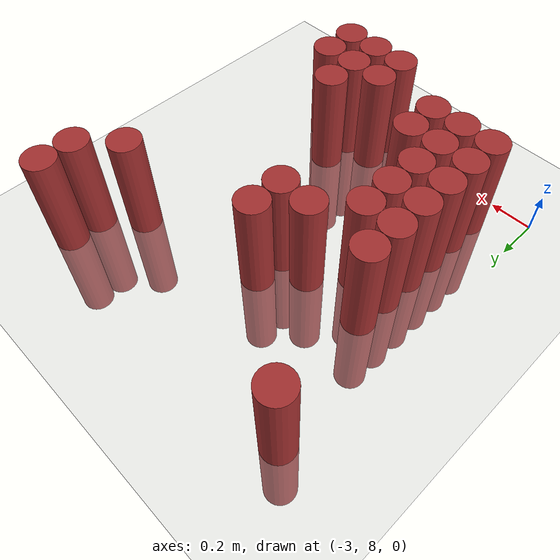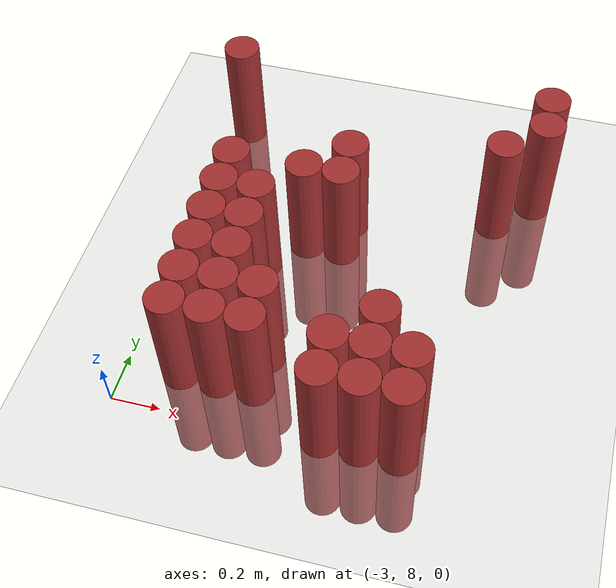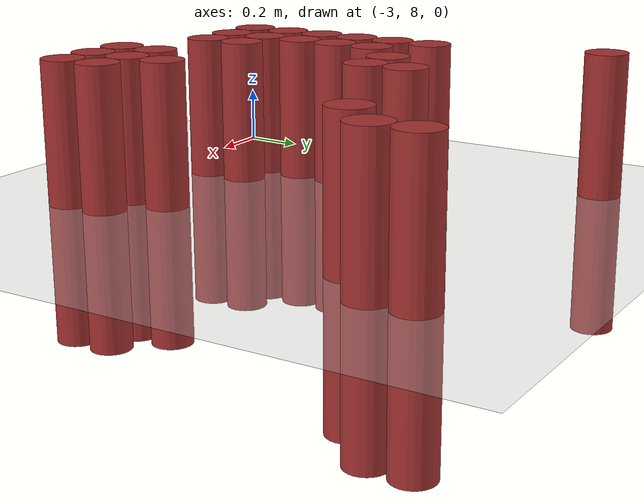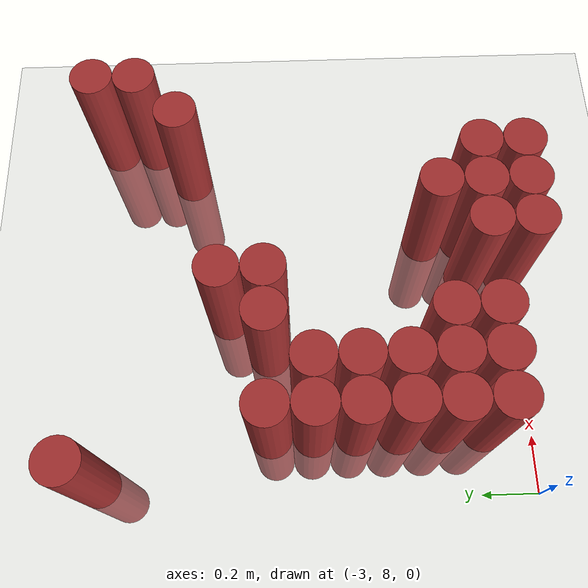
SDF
<sdf version="1.6">
 <world name="default">
  <model name="ground_plane">
   <static>1</static>
   <link name="link">
    <collision name="collision">
     <geometry><plane><normal>0 0 1</normal><size>100 100</size></plane></geometry>
     <surface><friction><ode><mu>100</mu><mu2>50</mu2></ode></friction></surface>
    </collision>
    <visual name="visual">
     <cast_shadows>0</cast_shadows>
     <geometry><plane><normal>0 0 1</normal><size>100 100</size></plane></geometry>
     <material>
      <script><uri>file://media/materials/scripts/gazebo.material</uri><name>Gazebo/Grey</name></script>
     </material>
    </visual>
   </link>
  </model>
  <model name="unit_cylinder_178">
   <static>1</static>
   <pose>-2.925000 9.525000 0.000000 0.000000 0.000000 0.000000</pose>
   <link name="link">
    <inertial>
     <mass>1</mass>
     <inertia><ixx>0.145833</ixx><ixy>0</ixy><ixz>0</ixz><iyy>0.145833</iyy><iyz>0</iyz><izz>0.125</izz></inertia>
    </inertial>
    <collision name="collision">
     <geometry><cylinder><radius>0.075000</radius><length>1</length></cylinder></geometry>
    </collision>
    <visual name="visual">
     <geometry><cylinder><radius>0.075000</radius><length>1</length></cylinder></geometry>
     <material>
      <ambient>0.648000 0.192000 0.192000 1</ambient>
      <diffuse>0.648000 0.192000 0.192000 1</diffuse>
     </material>
     <material>
      <script><name>Gazebo/Grey</name><uri>file://media/materials/scripts/gazebo.material</uri></script>
     </material>
    </visual>
   </link>
  </model>
  <model name="unit_cylinder_181">
   <static>1</static>
   <pose>-2.775000 8.175000 0.000000 0.000000 0.000000 0.000000</pose>
   <link name="link">
    <inertial>
     <mass>1</mass>
     <inertia><ixx>0.145833</ixx><ixy>0</ixy><ixz>0</ixz><iyy>0.145833</iyy><iyz>0</iyz><izz>0.125</izz></inertia>
    </inertial>
    <collision name="collision">
     <geometry><cylinder><radius>0.075000</radius><length>1</length></cylinder></geometry>
    </collision>
    <visual name="visual">
     <geometry><cylinder><radius>0.075000</radius><length>1</length></cylinder></geometry>
     <material>
      <ambient>0.648000 0.192000 0.192000 1</ambient>
      <diffuse>0.648000 0.192000 0.192000 1</diffuse>
     </material>
     <material>
      <script><name>Gazebo/Grey</name><uri>file://media/materials/scripts/gazebo.material</uri></script>
     </material>
    </visual>
   </link>
  </model>
  <model name="unit_cylinder_182">
   <static>1</static>
   <pose>-2.775000 8.325000 0.000000 0.000000 0.000000 0.000000</pose>
   <link name="link">
    <inertial>
     <mass>1</mass>
     <inertia><ixx>0.145833</ixx><ixy>0</ixy><ixz>0</ixz><iyy>0.145833</iyy><iyz>0</iyz><izz>0.125</izz></inertia>
    </inertial>
    <collision name="collision">
     <geometry><cylinder><radius>0.075000</radius><length>1</length></cylinder></geometry>
    </collision>
    <visual name="visual">
     <geometry><cylinder><radius>0.075000</radius><length>1</length></cylinder></geometry>
     <material>
      <ambient>0.648000 0.192000 0.192000 1</ambient>
      <diffuse>0.648000 0.192000 0.192000 1</diffuse>
     </material>
     <material>
      <script><name>Gazebo/Grey</name><uri>file://media/materials/scripts/gazebo.material</uri></script>
     </material>
    </visual>
   </link>
  </model>
  <model name="unit_cylinder_183">
   <static>1</static>
   <pose>-2.775000 8.475000 0.000000 0.000000 0.000000 0.000000</pose>
   <link name="link">
    <inertial>
     <mass>1</mass>
     <inertia><ixx>0.145833</ixx><ixy>0</ixy><ixz>0</ixz><iyy>0.145833</iyy><iyz>0</iyz><izz>0.125</izz></inertia>
    </inertial>
    <collision name="collision">
     <geometry><cylinder><radius>0.075000</radius><length>1</length></cylinder></geometry>
    </collision>
    <visual name="visual">
     <geometry><cylinder><radius>0.075000</radius><length>1</length></cylinder></geometry>
     <material>
      <ambient>0.648000 0.192000 0.192000 1</ambient>
      <diffuse>0.648000 0.192000 0.192000 1</diffuse>
     </material>
     <material>
      <script><name>Gazebo/Grey</name><uri>file://media/materials/scripts/gazebo.material</uri></script>
     </material>
    </visual>
   </link>
  </model>
  <model name="unit_cylinder_184">
   <static>1</static>
   <pose>-2.775000 8.625000 0.000000 0.000000 0.000000 0.000000</pose>
   <link name="link">
    <inertial>
     <mass>1</mass>
     <inertia><ixx>0.145833</ixx><ixy>0</ixy><ixz>0</ixz><iyy>0.145833</iyy><iyz>0</iyz><izz>0.125</izz></inertia>
    </inertial>
    <collision name="collision">
     <geometry><cylinder><radius>0.075000</radius><length>1</length></cylinder></geometry>
    </collision>
    <visual name="visual">
     <geometry><cylinder><radius>0.075000</radius><length>1</length></cylinder></geometry>
     <material>
      <ambient>0.648000 0.192000 0.192000 1</ambient>
      <diffuse>0.648000 0.192000 0.192000 1</diffuse>
     </material>
     <material>
      <script><name>Gazebo/Grey</name><uri>file://media/materials/scripts/gazebo.material</uri></script>
     </material>
    </visual>
   </link>
  </model>
  <model name="unit_cylinder_185">
   <static>1</static>
   <pose>-2.775000 8.775000 0.000000 0.000000 0.000000 0.000000</pose>
   <link name="link">
    <inertial>
     <mass>1</mass>
     <inertia><ixx>0.145833</ixx><ixy>0</ixy><ixz>0</ixz><iyy>0.145833</iyy><iyz>0</iyz><izz>0.125</izz></inertia>
    </inertial>
    <collision name="collision">
     <geometry><cylinder><radius>0.075000</radius><length>1</length></cylinder></geometry>
    </collision>
    <visual name="visual">
     <geometry><cylinder><radius>0.075000</radius><length>1</length></cylinder></geometry>
     <material>
      <ambient>0.648000 0.192000 0.192000 1</ambient>
      <diffuse>0.648000 0.192000 0.192000 1</diffuse>
     </material>
     <material>
      <script><name>Gazebo/Grey</name><uri>file://media/materials/scripts/gazebo.material</uri></script>
     </material>
    </visual>
   </link>
  </model>
  <model name="unit_cylinder_186">
   <static>1</static>
   <pose>-2.775000 8.925000 0.000000 0.000000 0.000000 0.000000</pose>
   <link name="link">
    <inertial>
     <mass>1</mass>
     <inertia><ixx>0.145833</ixx><ixy>0</ixy><ixz>0</ixz><iyy>0.145833</iyy><iyz>0</iyz><izz>0.125</izz></inertia>
    </inertial>
    <collision name="collision">
     <geometry><cylinder><radius>0.075000</radius><length>1</length></cylinder></geometry>
    </collision>
    <visual name="visual">
     <geometry><cylinder><radius>0.075000</radius><length>1</length></cylinder></geometry>
     <material>
      <ambient>0.648000 0.192000 0.192000 1</ambient>
      <diffuse>0.648000 0.192000 0.192000 1</diffuse>
     </material>
     <material>
      <script><name>Gazebo/Grey</name><uri>file://media/materials/scripts/gazebo.material</uri></script>
     </material>
    </visual>
   </link>
  </model>
  <model name="unit_cylinder_193">
   <static>1</static>
   <pose>-2.625000 8.175000 0.000000 0.000000 0.000000 0.000000</pose>
   <link name="link">
    <inertial>
     <mass>1</mass>
     <inertia><ixx>0.145833</ixx><ixy>0</ixy><ixz>0</ixz><iyy>0.145833</iyy><iyz>0</iyz><izz>0.125</izz></inertia>
    </inertial>
    <collision name="collision">
     <geometry><cylinder><radius>0.075000</radius><length>1</length></cylinder></geometry>
    </collision>
    <visual name="visual">
     <geometry><cylinder><radius>0.075000</radius><length>1</length></cylinder></geometry>
     <material>
      <ambient>0.648000 0.192000 0.192000 1</ambient>
      <diffuse>0.648000 0.192000 0.192000 1</diffuse>
     </material>
     <material>
      <script><name>Gazebo/Grey</name><uri>file://media/materials/scripts/gazebo.material</uri></script>
     </material>
    </visual>
   </link>
  </model>
  <model name="unit_cylinder_194">
   <static>1</static>
   <pose>-2.625000 8.325000 0.000000 0.000000 0.000000 0.000000</pose>
   <link name="link">
    <inertial>
     <mass>1</mass>
     <inertia><ixx>0.145833</ixx><ixy>0</ixy><ixz>0</ixz><iyy>0.145833</iyy><iyz>0</iyz><izz>0.125</izz></inertia>
    </inertial>
    <collision name="collision">
     <geometry><cylinder><radius>0.075000</radius><length>1</length></cylinder></geometry>
    </collision>
    <visual name="visual">
     <geometry><cylinder><radius>0.075000</radius><length>1</length></cylinder></geometry>
     <material>
      <ambient>0.648000 0.192000 0.192000 1</ambient>
      <diffuse>0.648000 0.192000 0.192000 1</diffuse>
     </material>
     <material>
      <script><name>Gazebo/Grey</name><uri>file://media/materials/scripts/gazebo.material</uri></script>
     </material>
    </visual>
   </link>
  </model>
  <model name="unit_cylinder_195">
   <static>1</static>
   <pose>-2.625000 8.475000 0.000000 0.000000 0.000000 0.000000</pose>
   <link name="link">
    <inertial>
     <mass>1</mass>
     <inertia><ixx>0.145833</ixx><ixy>0</ixy><ixz>0</ixz><iyy>0.145833</iyy><iyz>0</iyz><izz>0.125</izz></inertia>
    </inertial>
    <collision name="collision">
     <geometry><cylinder><radius>0.075000</radius><length>1</length></cylinder></geometry>
    </collision>
    <visual name="visual">
     <geometry><cylinder><radius>0.075000</radius><length>1</length></cylinder></geometry>
     <material>
      <ambient>0.648000 0.192000 0.192000 1</ambient>
      <diffuse>0.648000 0.192000 0.192000 1</diffuse>
     </material>
     <material>
      <script><name>Gazebo/Grey</name><uri>file://media/materials/scripts/gazebo.material</uri></script>
     </material>
    </visual>
   </link>
  </model>
  <model name="unit_cylinder_196">
   <static>1</static>
   <pose>-2.625000 8.625000 0.000000 0.000000 0.000000 0.000000</pose>
   <link name="link">
    <inertial>
     <mass>1</mass>
     <inertia><ixx>0.145833</ixx><ixy>0</ixy><ixz>0</ixz><iyy>0.145833</iyy><iyz>0</iyz><izz>0.125</izz></inertia>
    </inertial>
    <collision name="collision">
     <geometry><cylinder><radius>0.075000</radius><length>1</length></cylinder></geometry>
    </collision>
    <visual name="visual">
     <geometry><cylinder><radius>0.075000</radius><length>1</length></cylinder></geometry>
     <material>
      <ambient>0.648000 0.192000 0.192000 1</ambient>
      <diffuse>0.648000 0.192000 0.192000 1</diffuse>
     </material>
     <material>
      <script><name>Gazebo/Grey</name><uri>file://media/materials/scripts/gazebo.material</uri></script>
     </material>
    </visual>
   </link>
  </model>
  <model name="unit_cylinder_197">
   <static>1</static>
   <pose>-2.625000 8.775000 0.000000 0.000000 0.000000 0.000000</pose>
   <link name="link">
    <inertial>
     <mass>1</mass>
     <inertia><ixx>0.145833</ixx><ixy>0</ixy><ixz>0</ixz><iyy>0.145833</iyy><iyz>0</iyz><izz>0.125</izz></inertia>
    </inertial>
    <collision name="collision">
     <geometry><cylinder><radius>0.075000</radius><length>1</length></cylinder></geometry>
    </collision>
    <visual name="visual">
     <geometry><cylinder><radius>0.075000</radius><length>1</length></cylinder></geometry>
     <material>
      <ambient>0.648000 0.192000 0.192000 1</ambient>
      <diffuse>0.648000 0.192000 0.192000 1</diffuse>
     </material>
     <material>
      <script><name>Gazebo/Grey</name><uri>file://media/materials/scripts/gazebo.material</uri></script>
     </material>
    </visual>
   </link>
  </model>
  <model name="unit_cylinder_203">
   <static>1</static>
   <pose>-2.475000 8.175000 0.000000 0.000000 0.000000 0.000000</pose>
   <link name="link">
    <inertial>
     <mass>1</mass>
     <inertia><ixx>0.145833</ixx><ixy>0</ixy><ixz>0</ixz><iyy>0.145833</iyy><iyz>0</iyz><izz>0.125</izz></inertia>
    </inertial>
    <collision name="collision">
     <geometry><cylinder><radius>0.075000</radius><length>1</length></cylinder></geometry>
    </collision>
    <visual name="visual">
     <geometry><cylinder><radius>0.075000</radius><length>1</length></cylinder></geometry>
     <material>
      <ambient>0.648000 0.192000 0.192000 1</ambient>
      <diffuse>0.648000 0.192000 0.192000 1</diffuse>
     </material>
     <material>
      <script><name>Gazebo/Grey</name><uri>file://media/materials/scripts/gazebo.material</uri></script>
     </material>
    </visual>
   </link>
  </model>
  <model name="unit_cylinder_204">
   <static>1</static>
   <pose>-2.475000 8.325000 0.000000 0.000000 0.000000 0.000000</pose>
   <link name="link">
    <inertial>
     <mass>1</mass>
     <inertia><ixx>0.145833</ixx><ixy>0</ixy><ixz>0</ixz><iyy>0.145833</iyy><iyz>0</iyz><izz>0.125</izz></inertia>
    </inertial>
    <collision name="collision">
     <geometry><cylinder><radius>0.075000</radius><length>1</length></cylinder></geometry>
    </collision>
    <visual name="visual">
     <geometry><cylinder><radius>0.075000</radius><length>1</length></cylinder></geometry>
     <material>
      <ambient>0.648000 0.192000 0.192000 1</ambient>
      <diffuse>0.648000 0.192000 0.192000 1</diffuse>
     </material>
     <material>
      <script><name>Gazebo/Grey</name><uri>file://media/materials/scripts/gazebo.material</uri></script>
     </material>
    </visual>
   </link>
  </model>
  <model name="unit_cylinder_205">
   <static>1</static>
   <pose>-2.475000 8.925000 0.000000 0.000000 0.000000 0.000000</pose>
   <link name="link">
    <inertial>
     <mass>1</mass>
     <inertia><ixx>0.145833</ixx><ixy>0</ixy><ixz>0</ixz><iyy>0.145833</iyy><iyz>0</iyz><izz>0.125</izz></inertia>
    </inertial>
    <collision name="collision">
     <geometry><cylinder><radius>0.075000</radius><length>1</length></cylinder></geometry>
    </collision>
    <visual name="visual">
     <geometry><cylinder><radius>0.075000</radius><length>1</length></cylinder></geometry>
     <material>
      <ambient>0.648000 0.192000 0.192000 1</ambient>
      <diffuse>0.648000 0.192000 0.192000 1</diffuse>
     </material>
     <material>
      <script><name>Gazebo/Grey</name><uri>file://media/materials/scripts/gazebo.material</uri></script>
     </material>
    </visual>
   </link>
  </model>
  <model name="unit_cylinder_213">
   <static>1</static>
   <pose>-2.325000 8.925000 0.000000 0.000000 0.000000 0.000000</pose>
   <link name="link">
    <inertial>
     <mass>1</mass>
     <inertia><ixx>0.145833</ixx><ixy>0</ixy><ixz>0</ixz><iyy>0.145833</iyy><iyz>0</iyz><izz>0.125</izz></inertia>
    </inertial>
    <collision name="collision">
     <geometry><cylinder><radius>0.075000</radius><length>1</length></cylinder></geometry>
    </collision>
    <visual name="visual">
     <geometry><cylinder><radius>0.075000</radius><length>1</length></cylinder></geometry>
     <material>
      <ambient>0.648000 0.192000 0.192000 1</ambient>
      <diffuse>0.648000 0.192000 0.192000 1</diffuse>
     </material>
     <material>
      <script><name>Gazebo/Grey</name><uri>file://media/materials/scripts/gazebo.material</uri></script>
     </material>
    </visual>
   </link>
  </model>
  <model name="unit_cylinder_214">
   <static>1</static>
   <pose>-2.325000 9.075000 0.000000 0.000000 0.000000 0.000000</pose>
   <link name="link">
    <inertial>
     <mass>1</mass>
     <inertia><ixx>0.145833</ixx><ixy>0</ixy><ixz>0</ixz><iyy>0.145833</iyy><iyz>0</iyz><izz>0.125</izz></inertia>
    </inertial>
    <collision name="collision">
     <geometry><cylinder><radius>0.075000</radius><length>1</length></cylinder></geometry>
    </collision>
    <visual name="visual">
     <geometry><cylinder><radius>0.075000</radius><length>1</length></cylinder></geometry>
     <material>
      <ambient>0.648000 0.192000 0.192000 1</ambient>
      <diffuse>0.648000 0.192000 0.192000 1</diffuse>
     </material>
     <material>
      <script><name>Gazebo/Grey</name><uri>file://media/materials/scripts/gazebo.material</uri></script>
     </material>
    </visual>
   </link>
  </model>
  <model name="unit_cylinder_219">
   <static>1</static>
   <pose>-2.175000 8.025000 0.000000 0.000000 0.000000 0.000000</pose>
   <link name="link">
    <inertial>
     <mass>1</mass>
     <inertia><ixx>0.145833</ixx><ixy>0</ixy><ixz>0</ixz><iyy>0.145833</iyy><iyz>0</iyz><izz>0.125</izz></inertia>
    </inertial>
    <collision name="collision">
     <geometry><cylinder><radius>0.075000</radius><length>1</length></cylinder></geometry>
    </collision>
    <visual name="visual">
     <geometry><cylinder><radius>0.075000</radius><length>1</length></cylinder></geometry>
     <material>
      <ambient>0.648000 0.192000 0.192000 1</ambient>
      <diffuse>0.648000 0.192000 0.192000 1</diffuse>
     </material>
     <material>
      <script><name>Gazebo/Grey</name><uri>file://media/materials/scripts/gazebo.material</uri></script>
     </material>
    </visual>
   </link>
  </model>
  <model name="unit_cylinder_220">
   <static>1</static>
   <pose>-2.175000 8.175000 0.000000 0.000000 0.000000 0.000000</pose>
   <link name="link">
    <inertial>
     <mass>1</mass>
     <inertia><ixx>0.145833</ixx><ixy>0</ixy><ixz>0</ixz><iyy>0.145833</iyy><iyz>0</iyz><izz>0.125</izz></inertia>
    </inertial>
    <collision name="collision">
     <geometry><cylinder><radius>0.075000</radius><length>1</length></cylinder></geometry>
    </collision>
    <visual name="visual">
     <geometry><cylinder><radius>0.075000</radius><length>1</length></cylinder></geometry>
     <material>
      <ambient>0.648000 0.192000 0.192000 1</ambient>
      <diffuse>0.648000 0.192000 0.192000 1</diffuse>
     </material>
     <material>
      <script><name>Gazebo/Grey</name><uri>file://media/materials/scripts/gazebo.material</uri></script>
     </material>
    </visual>
   </link>
  </model>
  <model name="unit_cylinder_224">
   <static>1</static>
   <pose>-2.025000 8.025000 0.000000 0.000000 0.000000 0.000000</pose>
   <link name="link">
    <inertial>
     <mass>1</mass>
     <inertia><ixx>0.145833</ixx><ixy>0</ixy><ixz>0</ixz><iyy>0.145833</iyy><iyz>0</iyz><izz>0.125</izz></inertia>
    </inertial>
    <collision name="collision">
     <geometry><cylinder><radius>0.075000</radius><length>1</length></cylinder></geometry>
    </collision>
    <visual name="visual">
     <geometry><cylinder><radius>0.075000</radius><length>1</length></cylinder></geometry>
     <material>
      <ambient>0.648000 0.192000 0.192000 1</ambient>
      <diffuse>0.648000 0.192000 0.192000 1</diffuse>
     </material>
     <material>
      <script><name>Gazebo/Grey</name><uri>file://media/materials/scripts/gazebo.material</uri></script>
     </material>
    </visual>
   </link>
  </model>
  <model name="unit_cylinder_225">
   <static>1</static>
   <pose>-2.025000 8.175000 0.000000 0.000000 0.000000 0.000000</pose>
   <link name="link">
    <inertial>
     <mass>1</mass>
     <inertia><ixx>0.145833</ixx><ixy>0</ixy><ixz>0</ixz><iyy>0.145833</iyy><iyz>0</iyz><izz>0.125</izz></inertia>
    </inertial>
    <collision name="collision">
     <geometry><cylinder><radius>0.075000</radius><length>1</length></cylinder></geometry>
    </collision>
    <visual name="visual">
     <geometry><cylinder><radius>0.075000</radius><length>1</length></cylinder></geometry>
     <material>
      <ambient>0.648000 0.192000 0.192000 1</ambient>
      <diffuse>0.648000 0.192000 0.192000 1</diffuse>
     </material>
     <material>
      <script><name>Gazebo/Grey</name><uri>file://media/materials/scripts/gazebo.material</uri></script>
     </material>
    </visual>
   </link>
  </model>
  <model name="unit_cylinder_226">
   <static>1</static>
   <pose>-2.025000 8.325000 0.000000 0.000000 0.000000 0.000000</pose>
   <link name="link">
    <inertial>
     <mass>1</mass>
     <inertia><ixx>0.145833</ixx><ixy>0</ixy><ixz>0</ixz><iyy>0.145833</iyy><iyz>0</iyz><izz>0.125</izz></inertia>
    </inertial>
    <collision name="collision">
     <geometry><cylinder><radius>0.075000</radius><length>1</length></cylinder></geometry>
    </collision>
    <visual name="visual">
     <geometry><cylinder><radius>0.075000</radius><length>1</length></cylinder></geometry>
     <material>
      <ambient>0.648000 0.192000 0.192000 1</ambient>
      <diffuse>0.648000 0.192000 0.192000 1</diffuse>
     </material>
     <material>
      <script><name>Gazebo/Grey</name><uri>file://media/materials/scripts/gazebo.material</uri></script>
     </material>
    </visual>
   </link>
  </model>
  <model name="unit_cylinder_229">
   <static>1</static>
   <pose>-1.875000 8.025000 0.000000 0.000000 0.000000 0.000000</pose>
   <link name="link">
    <inertial>
     <mass>1</mass>
     <inertia><ixx>0.145833</ixx><ixy>0</ixy><ixz>0</ixz><iyy>0.145833</iyy><iyz>0</iyz><izz>0.125</izz></inertia>
    </inertial>
    <collision name="collision">
     <geometry><cylinder><radius>0.075000</radius><length>1</length></cylinder></geometry>
    </collision>
    <visual name="visual">
     <geometry><cylinder><radius>0.075000</radius><length>1</length></cylinder></geometry>
     <material>
      <ambient>0.648000 0.192000 0.192000 1</ambient>
      <diffuse>0.648000 0.192000 0.192000 1</diffuse>
     </material>
     <material>
      <script><name>Gazebo/Grey</name><uri>file://media/materials/scripts/gazebo.material</uri></script>
     </material>
    </visual>
   </link>
  </model>
  <model name="unit_cylinder_230">
   <static>1</static>
   <pose>-1.875000 8.175000 0.000000 0.000000 0.000000 0.000000</pose>
   <link name="link">
    <inertial>
     <mass>1</mass>
     <inertia><ixx>0.145833</ixx><ixy>0</ixy><ixz>0</ixz><iyy>0.145833</iyy><iyz>0</iyz><izz>0.125</izz></inertia>
    </inertial>
    <collision name="collision">
     <geometry><cylinder><radius>0.075000</radius><length>1</length></cylinder></geometry>
    </collision>
    <visual name="visual">
     <geometry><cylinder><radius>0.075000</radius><length>1</length></cylinder></geometry>
     <material>
      <ambient>0.648000 0.192000 0.192000 1</ambient>
      <diffuse>0.648000 0.192000 0.192000 1</diffuse>
     </material>
     <material>
      <script><name>Gazebo/Grey</name><uri>file://media/materials/scripts/gazebo.material</uri></script>
     </material>
    </visual>
   </link>
  </model>
  <model name="unit_cylinder_237">
   <static>1</static>
   <pose>-1.725000 9.225000 0.000000 0.000000 0.000000 0.000000</pose>
   <link name="link">
    <inertial>
     <mass>1</mass>
     <inertia><ixx>0.145833</ixx><ixy>0</ixy><ixz>0</ixz><iyy>0.145833</iyy><iyz>0</iyz><izz>0.125</izz></inertia>
    </inertial>
    <collision name="collision">
     <geometry><cylinder><radius>0.075000</radius><length>1</length></cylinder></geometry>
    </collision>
    <visual name="visual">
     <geometry><cylinder><radius>0.075000</radius><length>1</length></cylinder></geometry>
     <material>
      <ambient>0.648000 0.192000 0.192000 1</ambient>
      <diffuse>0.648000 0.192000 0.192000 1</diffuse>
     </material>
     <material>
      <script><name>Gazebo/Grey</name><uri>file://media/materials/scripts/gazebo.material</uri></script>
     </material>
    </visual>
   </link>
  </model>
  <model name="unit_cylinder_242">
   <static>1</static>
   <pose>-1.575000 9.375000 0.000000 0.000000 0.000000 0.000000</pose>
   <link name="link">
    <inertial>
     <mass>1</mass>
     <inertia><ixx>0.145833</ixx><ixy>0</ixy><ixz>0</ixz><iyy>0.145833</iyy><iyz>0</iyz><izz>0.125</izz></inertia>
    </inertial>
    <collision name="collision">
     <geometry><cylinder><radius>0.075000</radius><length>1</length></cylinder></geometry>
    </collision>
    <visual name="visual">
     <geometry><cylinder><radius>0.075000</radius><length>1</length></cylinder></geometry>
     <material>
      <ambient>0.648000 0.192000 0.192000 1</ambient>
      <diffuse>0.648000 0.192000 0.192000 1</diffuse>
     </material>
     <material>
      <script><name>Gazebo/Grey</name><uri>file://media/materials/scripts/gazebo.material</uri></script>
     </material>
    </visual>
   </link>
  </model>
  <model name="unit_cylinder_243">
   <static>1</static>
   <pose>-1.575000 9.525000 0.000000 0.000000 0.000000 0.000000</pose>
   <link name="link">
    <inertial>
     <mass>1</mass>
     <inertia><ixx>0.145833</ixx><ixy>0</ixy><ixz>0</ixz><iyy>0.145833</iyy><iyz>0</iyz><izz>0.125</izz></inertia>
    </inertial>
    <collision name="collision">
     <geometry><cylinder><radius>0.075000</radius><length>1</length></cylinder></geometry>
    </collision>
    <visual name="visual">
     <geometry><cylinder><radius>0.075000</radius><length>1</length></cylinder></geometry>
     <material>
      <ambient>0.648000 0.192000 0.192000 1</ambient>
      <diffuse>0.648000 0.192000 0.192000 1</diffuse>
     </material>
     <material>
      <script><name>Gazebo/Grey</name><uri>file://media/materials/scripts/gazebo.material</uri></script>
     </material>
    </visual>
   </link>
  </model>
 </world>
</sdf>
